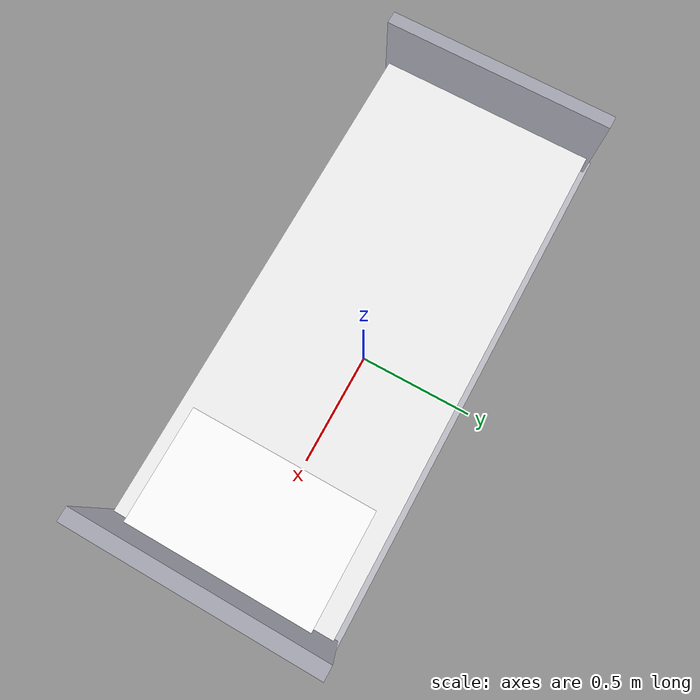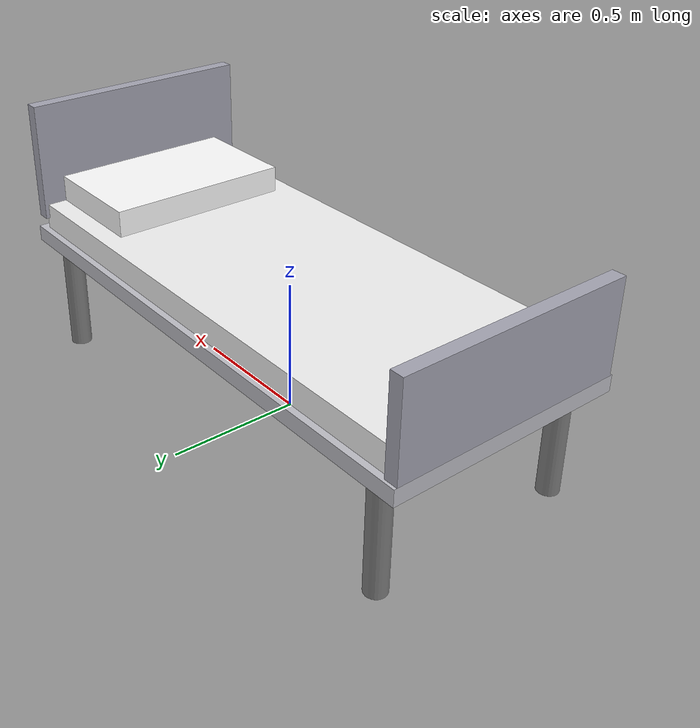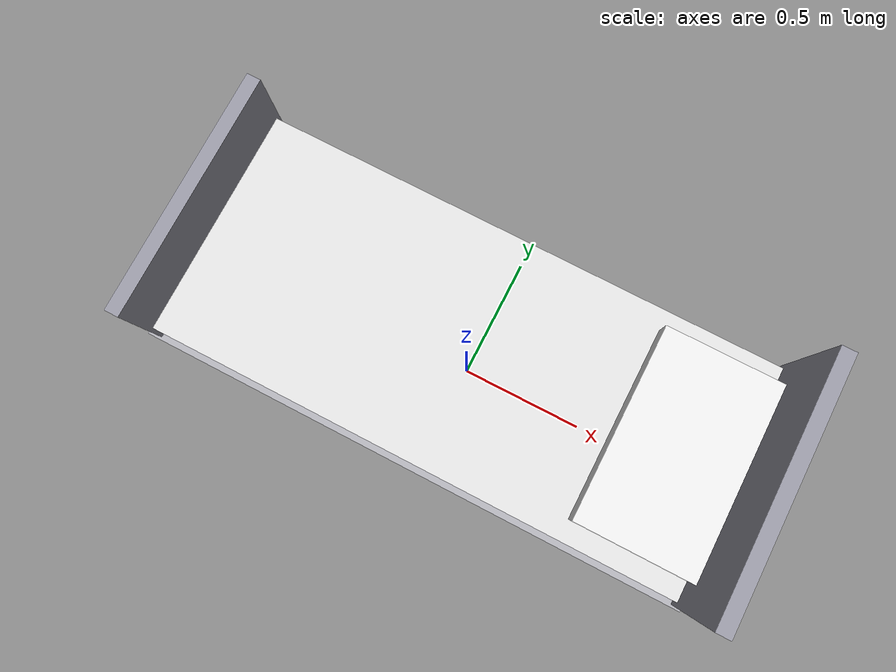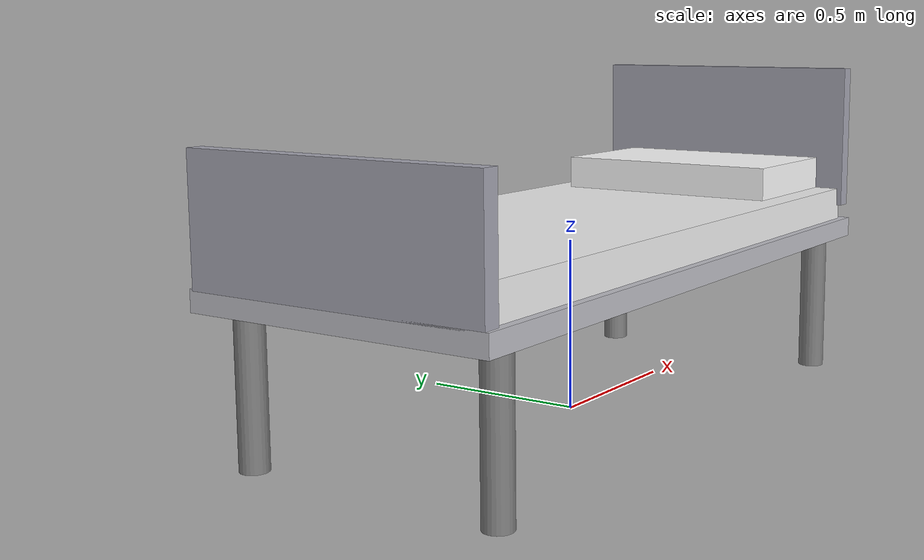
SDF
<?xml version="1.0"?>
<sdf version="1.6">
  <model name="hospital_bed">
    <static>true</static>
    <!-- Frame -->
    <link name="frame">
      <pose>0 0 0.45 0 0 0</pose>
      <collision name="c"><geometry><box><size>2.05 0.9 0.06</size></box></geometry></collision>
      <visual name="v">
        <geometry><box><size>2.05 0.9 0.06</size></box></geometry>
        <material><ambient>0.75 0.75 0.78 1</ambient><diffuse>0.75 0.75 0.78 1</diffuse></material>
      </visual>
    </link>
    <!-- Mattress -->
    <link name="mattress">
      <pose>0 0 0.52 0 0 0</pose>
      <collision name="c"><geometry><box><size>1.98 0.85 0.12</size></box></geometry></collision>
      <visual name="v">
        <geometry><box><size>1.98 0.85 0.12</size></box></geometry>
        <material><ambient>0.95 0.95 0.95 1</ambient><diffuse>0.95 0.95 0.95 1</diffuse></material>
      </visual>
    </link>
    <!-- Pillow -->
    <link name="pillow">
      <pose>0.8 0 0.63 0 0 0</pose>
      <collision name="c"><geometry><box><size>0.5 0.7 0.1</size></box></geometry></collision>
      <visual name="v">
        <geometry><box><size>0.5 0.7 0.1</size></box></geometry>
        <material><ambient>1 1 1 1</ambient><diffuse>1 1 1 1</diffuse></material>
      </visual>
    </link>
    <!-- Head rail -->
    <link name="head_rail">
      <pose>1.0 0 0.75 0 0 0</pose>
      <collision name="c"><geometry><box><size>0.05 0.88 0.45</size></box></geometry></collision>
      <visual name="v">
        <geometry><box><size>0.05 0.88 0.45</size></box></geometry>
        <material><ambient>0.65 0.65 0.70 1</ambient><diffuse>0.65 0.65 0.70 1</diffuse></material>
      </visual>
    </link>
    <!-- Foot rail -->
    <link name="foot_rail">
      <pose>-1.0 0 0.65 0 0 0</pose>
      <collision name="c"><geometry><box><size>0.05 0.88 0.35</size></box></geometry></collision>
      <visual name="v">
        <geometry><box><size>0.05 0.88 0.35</size></box></geometry>
        <material><ambient>0.65 0.65 0.70 1</ambient><diffuse>0.65 0.65 0.70 1</diffuse></material>
      </visual>
    </link>
    <!-- 4 wheels/legs -->
    <link name="leg_fl"><pose>0.9 0.38 0.22 0 0 0</pose>
      <collision name="c"><geometry><cylinder><radius>0.04</radius><length>0.45</length></cylinder></geometry></collision>
      <visual name="v"><geometry><cylinder><radius>0.04</radius><length>0.45</length></cylinder></geometry>
        <material><ambient>0.5 0.5 0.5 1</ambient><diffuse>0.5 0.5 0.5 1</diffuse></material></visual>
    </link>
    <link name="leg_fr"><pose>0.9 -0.38 0.22 0 0 0</pose>
      <collision name="c"><geometry><cylinder><radius>0.04</radius><length>0.45</length></cylinder></geometry></collision>
      <visual name="v"><geometry><cylinder><radius>0.04</radius><length>0.45</length></cylinder></geometry>
        <material><ambient>0.5 0.5 0.5 1</ambient><diffuse>0.5 0.5 0.5 1</diffuse></material></visual>
    </link>
    <link name="leg_bl"><pose>-0.9 0.38 0.22 0 0 0</pose>
      <collision name="c"><geometry><cylinder><radius>0.04</radius><length>0.45</length></cylinder></geometry></collision>
      <visual name="v"><geometry><cylinder><radius>0.04</radius><length>0.45</length></cylinder></geometry>
        <material><ambient>0.5 0.5 0.5 1</ambient><diffuse>0.5 0.5 0.5 1</diffuse></material></visual>
    </link>
    <link name="leg_br"><pose>-0.9 -0.38 0.22 0 0 0</pose>
      <collision name="c"><geometry><cylinder><radius>0.04</radius><length>0.45</length></cylinder></geometry></collision>
      <visual name="v"><geometry><cylinder><radius>0.04</radius><length>0.45</length></cylinder></geometry>
        <material><ambient>0.5 0.5 0.5 1</ambient><diffuse>0.5 0.5 0.5 1</diffuse></material></visual>
    </link>
  </model>
</sdf>
